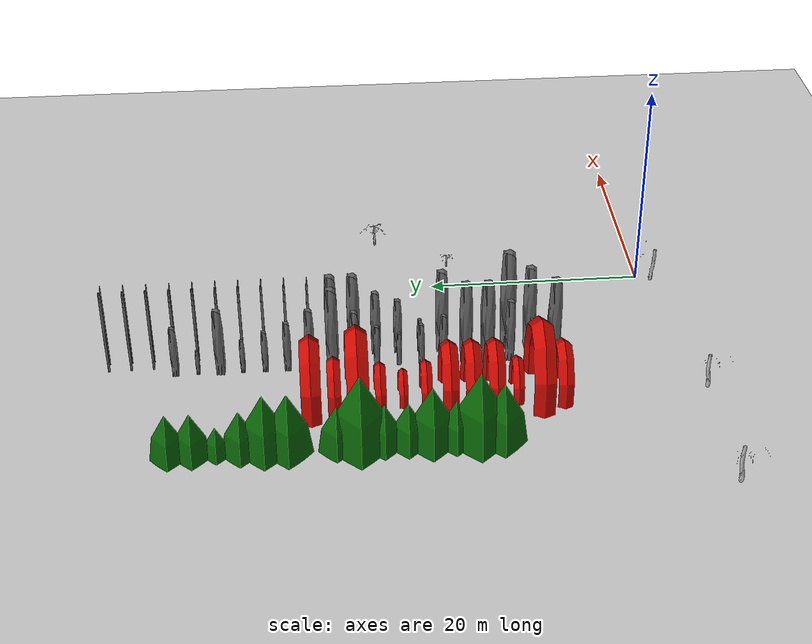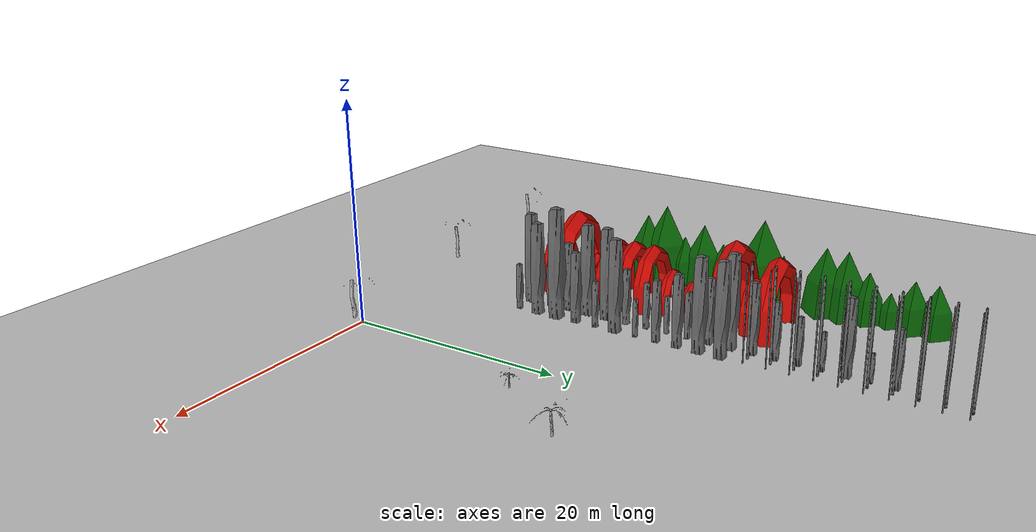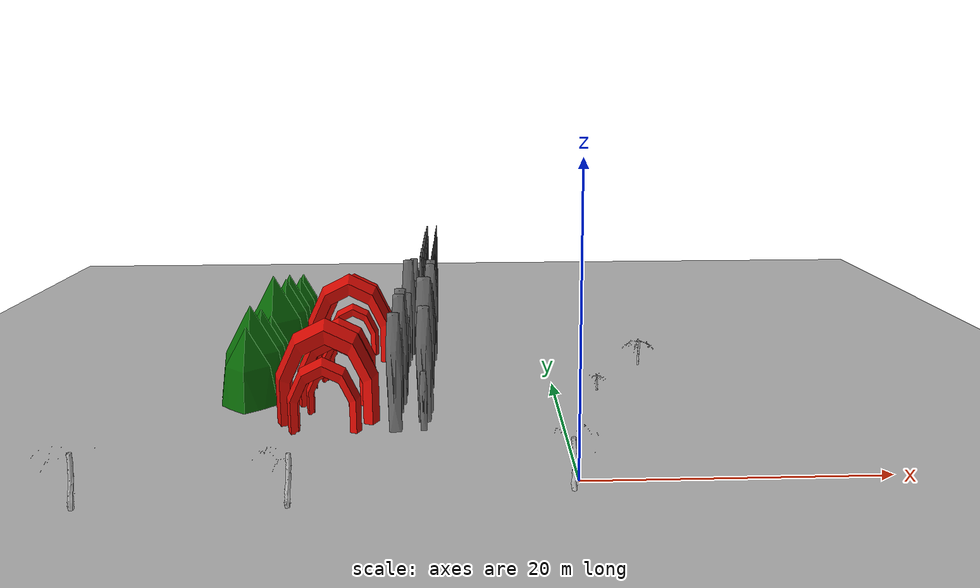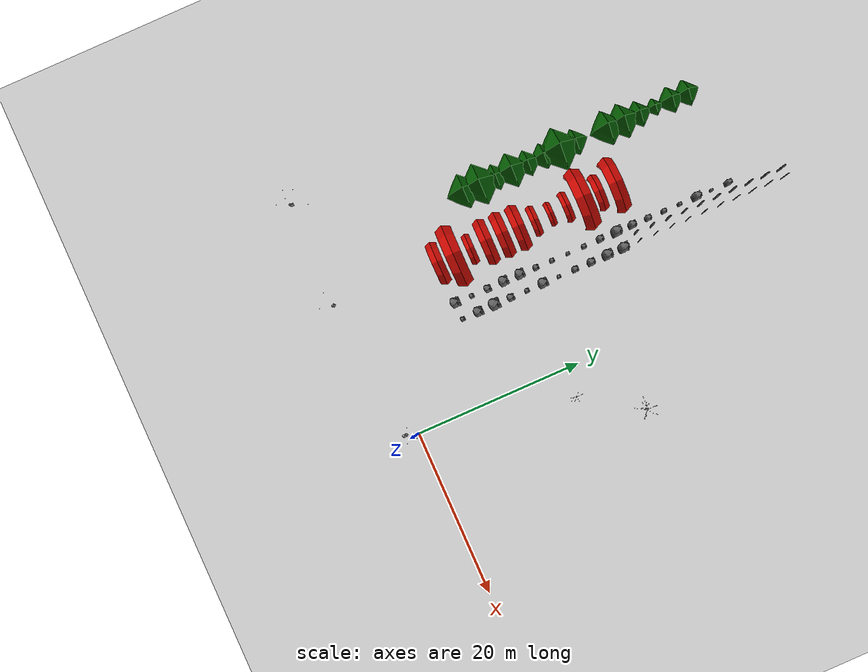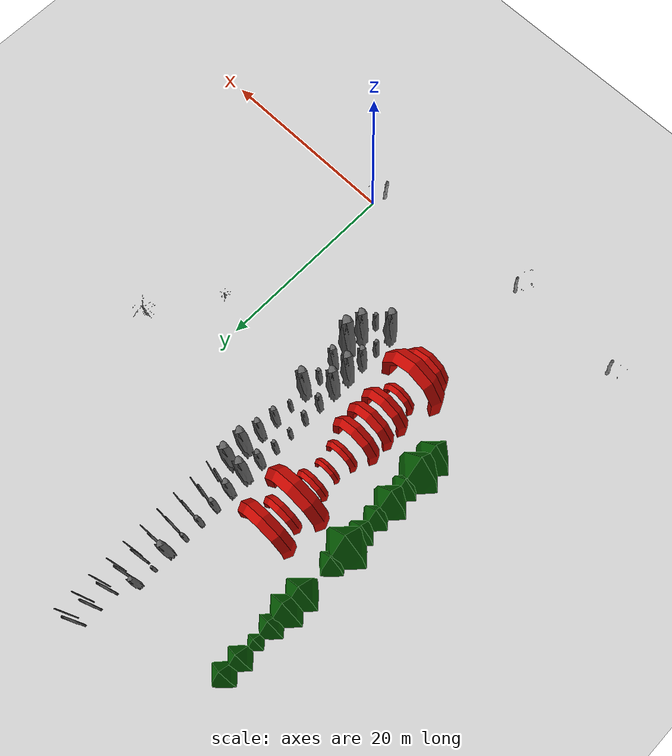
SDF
<sdf version="1.6">
 <world name="default">
  <model name="ground_plane">
   <static>1</static>
   <link name="link">
    <collision name="collision">
     <geometry><plane><normal>0 0 1</normal><size>1000 1000</size></plane></geometry>
     <surface>
      <contact><collide_bitmask>65535</collide_bitmask></contact>
      <friction><ode><mu>100</mu><mu2>50</mu2></ode></friction>
     </surface>
    </collision>
    <visual name="visual">
     <cast_shadows>0</cast_shadows>
     <geometry><plane><normal>0 0 1</normal><size>1000 1000</size></plane></geometry>
     <material>
      <script><uri>file://media/materials/scripts/gazebo.material</uri><name>Gazebo/Grey</name></script>
     </material>
    </visual>
   </link>
  </model>
  <model name="Simple Pyramid_3">
   <pose>-23.5 16 0 0 -0 0</pose>
   <static>1</static>
   <link name="link">
    <collision name="collision">
     <geometry><mesh><uri>model://Simple Pyramid/meshes/Simple Pyramid.dae</uri></mesh></geometry>
    </collision>
    <visual name="visual">
     <geometry><mesh><uri>model://Simple Pyramid/meshes/Simple Pyramid.dae</uri></mesh></geometry>
    </visual>
   </link>
  </model>
  <model name="Simple Pyramid_4">
   <pose>-23.5 18 0 0 -0 0</pose>
   <static>1</static>
   <link name="link">
    <collision name="collision">
     <geometry>
      <mesh><uri>model://Simple Pyramid/meshes/Simple Pyramid.dae</uri><scale>1.2 1.2 1.2</scale></mesh>
     </geometry>
    </collision>
    <visual name="visual">
     <geometry>
      <mesh><uri>model://Simple Pyramid/meshes/Simple Pyramid.dae</uri><scale>1.2 1.2 1.2</scale></mesh>
     </geometry>
    </visual>
   </link>
  </model>
  <model name="Simple Pyramid_5">
   <pose>-23.5 20 0 0 -0 0</pose>
   <static>1</static>
   <link name="link">
    <collision name="collision">
     <geometry>
      <mesh><uri>model://Simple Pyramid/meshes/Simple Pyramid.dae</uri><scale>0.75 0.75 0.75</scale></mesh>
     </geometry>
    </collision>
    <visual name="visual">
     <geometry>
      <mesh><uri>model://Simple Pyramid/meshes/Simple Pyramid.dae</uri><scale>0.75 0.75 0.75</scale></mesh>
     </geometry>
    </visual>
   </link>
  </model>
  <model name="Simple Pyramid_6">
   <pose>-23.5 22 0 0 -0 0</pose>
   <static>1</static>
   <link name="link">
    <collision name="collision">
     <geometry><mesh><uri>model://Simple Pyramid/meshes/Simple Pyramid.dae</uri></mesh></geometry>
    </collision>
    <visual name="visual">
     <geometry><mesh><uri>model://Simple Pyramid/meshes/Simple Pyramid.dae</uri></mesh></geometry>
    </visual>
   </link>
  </model>
  <model name="Simple Pyramid_7">
   <pose>-23.5 24 0 0 -0 0</pose>
   <static>1</static>
   <link name="link">
    <collision name="collision">
     <geometry>
      <mesh><uri>model://Simple Pyramid/meshes/Simple Pyramid.dae</uri><scale>0.75 0.75 0.75</scale></mesh>
     </geometry>
    </collision>
    <visual name="visual">
     <geometry>
      <mesh><uri>model://Simple Pyramid/meshes/Simple Pyramid.dae</uri><scale>0.75 0.75 0.75</scale></mesh>
     </geometry>
    </visual>
   </link>
  </model>
  <model name="Simple Pyramid_8">
   <pose>-23.5 26 0 0 -0 0</pose>
   <static>1</static>
   <link name="link">
    <collision name="collision">
     <geometry>
      <mesh><uri>model://Simple Pyramid/meshes/Simple Pyramid.dae</uri><scale>0.75 0.75 0.75</scale></mesh>
     </geometry>
    </collision>
    <visual name="visual">
     <geometry>
      <mesh><uri>model://Simple Pyramid/meshes/Simple Pyramid.dae</uri><scale>0.75 0.75 0.75</scale></mesh>
     </geometry>
    </visual>
   </link>
  </model>
  <model name="Simple Pyramid_9">
   <pose>-23.5 28 0 0 -0 0</pose>
   <static>1</static>
   <link name="link">
    <collision name="collision">
     <geometry>
      <mesh><uri>model://Simple Pyramid/meshes/Simple Pyramid.dae</uri><scale>1.25 1.25 1.25</scale></mesh>
     </geometry>
    </collision>
    <visual name="visual">
     <geometry>
      <mesh><uri>model://Simple Pyramid/meshes/Simple Pyramid.dae</uri><scale>1.25 1.25 1.25</scale></mesh>
     </geometry>
    </visual>
   </link>
  </model>
  <model name="Simple Pyramid_10">
   <pose>-23.5 30 0 0 -0 0</pose>
   <static>1</static>
   <link name="link">
    <collision name="collision">
     <geometry>
      <mesh><uri>model://Simple Pyramid/meshes/Simple Pyramid.dae</uri><scale>0.75 0.75 0.75</scale></mesh>
     </geometry>
    </collision>
    <visual name="visual">
     <geometry>
      <mesh><uri>model://Simple Pyramid/meshes/Simple Pyramid.dae</uri><scale>0.75 0.75 0.75</scale></mesh>
     </geometry>
    </visual>
   </link>
  </model>
  <model name="Simple U_7">
   <pose>-17 24 0 0 -0 0</pose>
   <static>1</static>
   <link name="link">
    <collision name="collision">
     <geometry><mesh><uri>model://Simple U/meshes/Simple U.dae</uri><scale>0.4 0.4 0.4</scale></mesh></geometry>
    </collision>
    <visual name="visual">
     <geometry><mesh><uri>model://Simple U/meshes/Simple U.dae</uri><scale>0.4 0.4 0.4</scale></mesh></geometry>
    </visual>
   </link>
  </model>
  <model name="Simple U_0">
   <pose>-17 10 0 0 -0 0</pose>
   <static>1</static>
   <link name="link">
    <collision name="collision">
     <geometry><mesh><uri>model://Simple U/meshes/Simple U.dae</uri><scale>0.7 0.7 0.7</scale></mesh></geometry>
    </collision>
    <visual name="visual">
     <geometry><mesh><uri>model://Simple U/meshes/Simple U.dae</uri><scale>0.7 0.7 0.7</scale></mesh></geometry>
    </visual>
   </link>
  </model>
  <model name="Simple U_1">
   <pose>-17 12 0 0 -0 0</pose>
   <static>1</static>
   <link name="link">
    <collision name="collision">
     <geometry><mesh><uri>model://Simple U/meshes/Simple U.dae</uri></mesh></geometry>
    </collision>
    <visual name="visual">
     <geometry><mesh><uri>model://Simple U/meshes/Simple U.dae</uri></mesh></geometry>
    </visual>
   </link>
  </model>
  <model name="Simple U_2">
   <pose>-17 14 0 0 -0 0</pose>
   <static>1</static>
   <link name="link">
    <collision name="collision">
     <geometry><mesh><uri>model://Simple U/meshes/Simple U.dae</uri><scale>0.5 0.5 0.5</scale></mesh></geometry>
    </collision>
    <visual name="visual">
     <geometry><mesh><uri>model://Simple U/meshes/Simple U.dae</uri><scale>0.5 0.5 0.5</scale></mesh></geometry>
    </visual>
   </link>
  </model>
  <model name="Simple U_3">
   <pose>-17 16 0 0 -0 0</pose>
   <static>1</static>
   <link name="link">
    <collision name="collision">
     <geometry><mesh><uri>model://Simple U/meshes/Simple U.dae</uri><scale>0.75 0.75 0.75</scale></mesh></geometry>
    </collision>
    <visual name="visual">
     <geometry><mesh><uri>model://Simple U/meshes/Simple U.dae</uri><scale>0.75 0.75 0.75</scale></mesh></geometry>
    </visual>
   </link>
  </model>
  <model name="Simple U_4">
   <pose>-17 18 0 0 -0 0</pose>
   <static>1</static>
   <link name="link">
    <collision name="collision">
     <geometry><mesh><uri>model://Simple U/meshes/Simple U.dae</uri><scale>0.75 0.75 0.75</scale></mesh></geometry>
    </collision>
    <visual name="visual">
     <geometry><mesh><uri>model://Simple U/meshes/Simple U.dae</uri><scale>0.75 0.75 0.75</scale></mesh></geometry>
    </visual>
   </link>
  </model>
  <model name="Simple U_5">
   <pose>-17 20 0 0 -0 0</pose>
   <static>1</static>
   <link name="link">
    <collision name="collision">
     <geometry><mesh><uri>model://Simple U/meshes/Simple U.dae</uri><scale>0.75 0.75 0.75</scale></mesh></geometry>
    </collision>
    <visual name="visual">
     <geometry><mesh><uri>model://Simple U/meshes/Simple U.dae</uri><scale>0.75 0.75 0.75</scale></mesh></geometry>
    </visual>
   </link>
  </model>
  <model name="Simple U_6">
   <pose>-17 22 0 0 -0 0</pose>
   <static>1</static>
   <link name="link">
    <collision name="collision">
     <geometry><mesh><uri>model://Simple U/meshes/Simple U.dae</uri><scale>0.5 0.5 0.5</scale></mesh></geometry>
    </collision>
    <visual name="visual">
     <geometry><mesh><uri>model://Simple U/meshes/Simple U.dae</uri><scale>0.5 0.5 0.5</scale></mesh></geometry>
    </visual>
   </link>
  </model>
  <model name="Simple Stone_25">
   <pose>-10 24 0 0 -0 0</pose>
   <static>1</static>
   <link name="link">
    <collision name="collision">
     <geometry>
      <mesh><uri>model://Simple Stone/meshes/Simple Stone.dae</uri><scale>0.66 0.66 0.66</scale></mesh>
     </geometry>
    </collision>
    <visual name="visual">
     <geometry>
      <mesh><uri>model://Simple Stone/meshes/Simple Stone.dae</uri><scale>0.66 0.66 0.66</scale></mesh>
     </geometry>
    </visual>
   </link>
  </model>
  <model name="Simple Stone_0">
   <pose>-12 10 0 0 -0 0</pose>
   <static>1</static>
   <link name="link">
    <collision name="collision">
     <geometry><mesh><uri>model://Simple Stone/meshes/Simple Stone.dae</uri></mesh></geometry>
    </collision>
    <visual name="visual">
     <geometry><mesh><uri>model://Simple Stone/meshes/Simple Stone.dae</uri></mesh></geometry>
    </visual>
   </link>
  </model>
  <model name="Simple Stone_1">
   <pose>-12 12 0 0 -0 0</pose>
   <static>1</static>
   <link name="link">
    <collision name="collision">
     <geometry>
      <mesh><uri>model://Simple Stone/meshes/Simple Stone.dae</uri><scale>0.5 0.5 0.5</scale></mesh>
     </geometry>
    </collision>
    <visual name="visual">
     <geometry>
      <mesh><uri>model://Simple Stone/meshes/Simple Stone.dae</uri><scale>0.5 0.5 0.5</scale></mesh>
     </geometry>
    </visual>
   </link>
  </model>
  <model name="Simple Stone_2">
   <pose>-12 14 0 0 -0 0</pose>
   <static>1</static>
   <link name="link">
    <collision name="collision">
     <geometry>
      <mesh><uri>model://Simple Stone/meshes/Simple Stone.dae</uri><scale>0.75 0.75 0.75</scale></mesh>
     </geometry>
    </collision>
    <visual name="visual">
     <geometry>
      <mesh><uri>model://Simple Stone/meshes/Simple Stone.dae</uri><scale>0.75 0.75 0.75</scale></mesh>
     </geometry>
    </visual>
   </link>
  </model>
  <model name="Simple Stone_3">
   <pose>-12 16 0 0 -0 0</pose>
   <static>1</static>
   <link name="link">
    <collision name="collision">
     <geometry><mesh><uri>model://Simple Stone/meshes/Simple Stone.dae</uri></mesh></geometry>
    </collision>
    <visual name="visual">
     <geometry><mesh><uri>model://Simple Stone/meshes/Simple Stone.dae</uri></mesh></geometry>
    </visual>
   </link>
  </model>
  <model name="Simple Stone_4">
   <pose>-12 18 0 0 -0 0</pose>
   <static>1</static>
   <link name="link">
    <collision name="collision">
     <geometry><mesh><uri>model://Simple Stone/meshes/Simple Stone.dae</uri></mesh></geometry>
    </collision>
    <visual name="visual">
     <geometry><mesh><uri>model://Simple Stone/meshes/Simple Stone.dae</uri></mesh></geometry>
    </visual>
   </link>
  </model>
  <model name="Simple Stone_5">
   <pose>-12 20 0 0 -0 0</pose>
   <static>1</static>
   <link name="link">
    <collision name="collision">
     <geometry>
      <mesh><uri>model://Simple Stone/meshes/Simple Stone.dae</uri><scale>0.6 0.6 0.6</scale></mesh>
     </geometry>
    </collision>
    <visual name="visual">
     <geometry>
      <mesh><uri>model://Simple Stone/meshes/Simple Stone.dae</uri><scale>0.6 0.6 0.6</scale></mesh>
     </geometry>
    </visual>
   </link>
  </model>
  <model name="Simple Stone_6">
   <pose>-12 22 0 0 -0 0</pose>
   <static>1</static>
   <link name="link">
    <collision name="collision">
     <geometry>
      <mesh><uri>model://Simple Stone/meshes/Simple Stone.dae</uri><scale>0.5 0.5 0.5</scale></mesh>
     </geometry>
    </collision>
    <visual name="visual">
     <geometry>
      <mesh><uri>model://Simple Stone/meshes/Simple Stone.dae</uri><scale>0.5 0.5 0.5</scale></mesh>
     </geometry>
    </visual>
   </link>
  </model>
  <model name="Simple Stone_7">
   <pose>-12 24 0 0 -0 0</pose>
   <static>1</static>
   <link name="link">
    <collision name="collision">
     <geometry>
      <mesh><uri>model://Simple Stone/meshes/Simple Stone.dae</uri><scale>0.4 0.4 0.4</scale></mesh>
     </geometry>
    </collision>
    <visual name="visual">
     <geometry>
      <mesh><uri>model://Simple Stone/meshes/Simple Stone.dae</uri><scale>0.4 0.4 0.4</scale></mesh>
     </geometry>
    </visual>
   </link>
  </model>
  <model name="Simple Stone_8">
   <pose>-12 26 0 0 -0 0</pose>
   <static>1</static>
   <link name="link">
    <collision name="collision">
     <geometry>
      <mesh><uri>model://Simple Stone/meshes/Simple Stone.dae</uri><scale>0.5 0.5 0.5</scale></mesh>
     </geometry>
    </collision>
    <visual name="visual">
     <geometry>
      <mesh><uri>model://Simple Stone/meshes/Simple Stone.dae</uri><scale>0.5 0.5 0.5</scale></mesh>
     </geometry>
    </visual>
   </link>
  </model>
  <model name="Simple Stone_9">
   <pose>-12 28 0 0 -0 0</pose>
   <static>1</static>
   <link name="link">
    <collision name="collision">
     <geometry>
      <mesh><uri>model://Simple Stone/meshes/Simple Stone.dae</uri><scale>0.7 0.7 0.7</scale></mesh>
     </geometry>
    </collision>
    <visual name="visual">
     <geometry>
      <mesh><uri>model://Simple Stone/meshes/Simple Stone.dae</uri><scale>0.7 0.7 0.7</scale></mesh>
     </geometry>
    </visual>
   </link>
  </model>
  <model name="Simple Stone_10">
   <pose>-12 30 0 0 -0 0</pose>
   <static>1</static>
   <link name="link">
    <collision name="collision">
     <geometry><mesh><uri>model://Simple Stone/meshes/Simple Stone.dae</uri></mesh></geometry>
    </collision>
    <visual name="visual">
     <geometry><mesh><uri>model://Simple Stone/meshes/Simple Stone.dae</uri></mesh></geometry>
    </visual>
   </link>
  </model>
  <model name="Simple Stone_11">
   <pose>-12 32 0 0 -0 0</pose>
   <static>1</static>
   <link name="link">
    <collision name="collision">
     <geometry>
      <mesh><uri>model://Simple Stone/meshes/Simple Stone.dae</uri><scale>0.75 0.75 0.75</scale></mesh>
     </geometry>
    </collision>
    <visual name="visual">
     <geometry>
      <mesh><uri>model://Simple Stone/meshes/Simple Stone.dae</uri><scale>0.75 0.75 0.75</scale></mesh>
     </geometry>
    </visual>
   </link>
  </model>
  <model name="Simple Stone_12">
   <pose>-12 34 0 0 -0 0</pose>
   <static>1</static>
   <link name="link">
    <collision name="collision">
     <geometry>
      <mesh><uri>model://Simple Stone/meshes/Simple Stone.dae</uri><scale>0.6 0.6 0.6</scale></mesh>
     </geometry>
    </collision>
    <visual name="visual">
     <geometry>
      <mesh><uri>model://Simple Stone/meshes/Simple Stone.dae</uri><scale>0.6 0.6 0.6</scale></mesh>
     </geometry>
    </visual>
   </link>
  </model>
  <model name="Simple Stone_13">
   <pose>-12 36 0 0 -0 0</pose>
   <static>1</static>
   <link name="link">
    <collision name="collision">
     <geometry>
      <mesh><uri>model://Simple Stone/meshes/Simple Stone.dae</uri><scale>0.5 0.5 0.5</scale></mesh>
     </geometry>
    </collision>
    <visual name="visual">
     <geometry>
      <mesh><uri>model://Simple Stone/meshes/Simple Stone.dae</uri><scale>0.5 0.5 0.5</scale></mesh>
     </geometry>
    </visual>
   </link>
  </model>
  <model name="Simple Stone_14">
   <pose>-12 38 0 0 -0 0</pose>
   <static>1</static>
   <link name="link">
    <collision name="collision">
     <geometry>
      <mesh><uri>model://Simple Stone/meshes/Simple Stone.dae</uri><scale>0.4 0.4 0.4</scale></mesh>
     </geometry>
    </collision>
    <visual name="visual">
     <geometry>
      <mesh><uri>model://Simple Stone/meshes/Simple Stone.dae</uri><scale>0.4 0.4 0.4</scale></mesh>
     </geometry>
    </visual>
   </link>
  </model>
  <model name="Simple Stone_15">
   <pose>-12 40 0 0 -0 0</pose>
   <static>1</static>
   <link name="link">
    <collision name="collision">
     <geometry>
      <mesh><uri>model://Simple Stone/meshes/Simple Stone.dae</uri><scale>0.8 0.8 0.8</scale></mesh>
     </geometry>
    </collision>
    <visual name="visual">
     <geometry>
      <mesh><uri>model://Simple Stone/meshes/Simple Stone.dae</uri><scale>0.8 0.8 0.8</scale></mesh>
     </geometry>
    </visual>
   </link>
  </model>
  <model name="Simple Stone_16">
   <pose>-12 42 0 0 -0 0</pose>
   <static>1</static>
   <link name="link">
    <collision name="collision">
     <geometry>
      <mesh><uri>model://Simple Stone/meshes/Simple Stone.dae</uri><scale>0.3 0.3 0.3</scale></mesh>
     </geometry>
    </collision>
    <visual name="visual">
     <geometry>
      <mesh><uri>model://Simple Stone/meshes/Simple Stone.dae</uri><scale>0.3 0.3 0.3</scale></mesh>
     </geometry>
    </visual>
   </link>
  </model>
  <model name="Simple Stone_17">
   <pose>-12 44 0 0 -0 0</pose>
   <static>1</static>
   <link name="link">
    <collision name="collision">
     <geometry>
      <mesh><uri>model://Simple Stone/meshes/Simple Stone.dae</uri><scale>0.6 0.6 0.6</scale></mesh>
     </geometry>
    </collision>
    <visual name="visual">
     <geometry>
      <mesh><uri>model://Simple Stone/meshes/Simple Stone.dae</uri><scale>0.6 0.6 0.6</scale></mesh>
     </geometry>
    </visual>
   </link>
  </model>
  <model name="Simple Stone_18">
   <pose>-10 10 0 0 -0 0</pose>
   <static>1</static>
   <link name="link">
    <collision name="collision">
     <geometry>
      <mesh><uri>model://Simple Stone/meshes/Simple Stone.dae</uri><scale>0.5 0.5 0.5</scale></mesh>
     </geometry>
    </collision>
    <visual name="visual">
     <geometry>
      <mesh><uri>model://Simple Stone/meshes/Simple Stone.dae</uri><scale>0.5 0.5 0.5</scale></mesh>
     </geometry>
    </visual>
   </link>
  </model>
  <model name="Simple Stone_19">
   <pose>-10 12 0 0 -0 0</pose>
   <static>1</static>
   <link name="link">
    <collision name="collision">
     <geometry><mesh><uri>model://Simple Stone/meshes/Simple Stone.dae</uri></mesh></geometry>
    </collision>
    <visual name="visual">
     <geometry><mesh><uri>model://Simple Stone/meshes/Simple Stone.dae</uri></mesh></geometry>
    </visual>
   </link>
  </model>
  <model name="Simple Stone_20">
   <pose>-10 14 0 0 -0 0</pose>
   <static>1</static>
   <link name="link">
    <collision name="collision">
     <geometry>
      <mesh><uri>model://Simple Stone/meshes/Simple Stone.dae</uri><scale>1.2 1.2 1.2</scale></mesh>
     </geometry>
    </collision>
    <visual name="visual">
     <geometry>
      <mesh><uri>model://Simple Stone/meshes/Simple Stone.dae</uri><scale>1.2 1.2 1.2</scale></mesh>
     </geometry>
    </visual>
   </link>
  </model>
  <model name="Simple Stone_21">
   <pose>-10 16 0 0 -0 0</pose>
   <static>1</static>
   <link name="link">
    <collision name="collision">
     <geometry>
      <mesh><uri>model://Simple Stone/meshes/Simple Stone.dae</uri><scale>0.77 0.77 0.77</scale></mesh>
     </geometry>
    </collision>
    <visual name="visual">
     <geometry>
      <mesh><uri>model://Simple Stone/meshes/Simple Stone.dae</uri><scale>0.77 0.77 0.77</scale></mesh>
     </geometry>
    </visual>
   </link>
  </model>
  <model name="Simple Stone_22">
   <pose>-10 18 0 0 -0 0</pose>
   <static>1</static>
   <link name="link">
    <collision name="collision">
     <geometry>
      <mesh><uri>model://Simple Stone/meshes/Simple Stone.dae</uri><scale>0.5 0.5 0.5</scale></mesh>
     </geometry>
    </collision>
    <visual name="visual">
     <geometry>
      <mesh><uri>model://Simple Stone/meshes/Simple Stone.dae</uri><scale>0.5 0.5 0.5</scale></mesh>
     </geometry>
    </visual>
   </link>
  </model>
  <model name="Simple Stone_23">
   <pose>-10 20 0 0 -0 0</pose>
   <static>1</static>
   <link name="link">
    <collision name="collision">
     <geometry><mesh><uri>model://Simple Stone/meshes/Simple Stone.dae</uri></mesh></geometry>
    </collision>
    <visual name="visual">
     <geometry><mesh><uri>model://Simple Stone/meshes/Simple Stone.dae</uri></mesh></geometry>
    </visual>
   </link>
  </model>
  <model name="Simple Stone_24">
   <pose>-10 22 0 0 -0 0</pose>
   <static>1</static>
   <link name="link">
    <collision name="collision">
     <geometry>
      <mesh><uri>model://Simple Stone/meshes/Simple Stone.dae</uri><scale>0.4 0.4 0.4</scale></mesh>
     </geometry>
    </collision>
    <visual name="visual">
     <geometry>
      <mesh><uri>model://Simple Stone/meshes/Simple Stone.dae</uri><scale>0.4 0.4 0.4</scale></mesh>
     </geometry>
    </visual>
   </link>
  </model>
  <model name="Simple Pyramid_17">
   <pose>-23.5 44 0 0 -0 0</pose>
   <static>1</static>
   <link name="link">
    <collision name="collision">
     <geometry>
      <mesh><uri>model://Simple Pyramid/meshes/Simple Pyramid.dae</uri><scale>0.75 0.75 0.75</scale></mesh>
     </geometry>
    </collision>
    <visual name="visual">
     <geometry>
      <mesh><uri>model://Simple Pyramid/meshes/Simple Pyramid.dae</uri><scale>0.75 0.75 0.75</scale></mesh>
     </geometry>
    </visual>
   </link>
  </model>
  <model name="Simple U_11">
   <pose>-17 32 0 0 -0 0</pose>
   <static>1</static>
   <link name="link">
    <collision name="collision">
     <geometry><mesh><uri>model://Simple U/meshes/Simple U.dae</uri><scale>0.9 0.9 0.9</scale></mesh></geometry>
    </collision>
    <visual name="visual">
     <geometry><mesh><uri>model://Simple U/meshes/Simple U.dae</uri><scale>0.9 0.9 0.9</scale></mesh></geometry>
    </visual>
   </link>
  </model>
  <model name="Simple U_8">
   <pose>-17 26 0 0 -0 0</pose>
   <static>1</static>
   <link name="link">
    <collision name="collision">
     <geometry><mesh><uri>model://Simple U/meshes/Simple U.dae</uri><scale>0.5 0.5 0.5</scale></mesh></geometry>
    </collision>
    <visual name="visual">
     <geometry><mesh><uri>model://Simple U/meshes/Simple U.dae</uri><scale>0.5 0.5 0.5</scale></mesh></geometry>
    </visual>
   </link>
  </model>
  <model name="Simple U_9">
   <pose>-17 28 0 0 -0 0</pose>
   <static>1</static>
   <link name="link">
    <collision name="collision">
     <geometry><mesh><uri>model://Simple U/meshes/Simple U.dae</uri></mesh></geometry>
    </collision>
    <visual name="visual">
     <geometry><mesh><uri>model://Simple U/meshes/Simple U.dae</uri></mesh></geometry>
    </visual>
   </link>
  </model>
  <model name="Simple Pyramid_12">
   <pose>-23.5 34 0 0 -0 0</pose>
   <static>1</static>
   <link name="link">
    <collision name="collision">
     <geometry><mesh><uri>model://Simple Pyramid/meshes/Simple Pyramid.dae</uri></mesh></geometry>
    </collision>
    <visual name="visual">
     <geometry><mesh><uri>model://Simple Pyramid/meshes/Simple Pyramid.dae</uri></mesh></geometry>
    </visual>
   </link>
  </model>
  <model name="Simple Pyramid_13">
   <pose>-23.5 36 0 0 -0 0</pose>
   <static>1</static>
   <link name="link">
    <collision name="collision">
     <geometry><mesh><uri>model://Simple Pyramid/meshes/Simple Pyramid.dae</uri></mesh></geometry>
    </collision>
    <visual name="visual">
     <geometry><mesh><uri>model://Simple Pyramid/meshes/Simple Pyramid.dae</uri></mesh></geometry>
    </visual>
   </link>
  </model>
  <model name="Simple Pyramid_14">
   <pose>-23.5 38 0 0 -0 0</pose>
   <static>1</static>
   <link name="link">
    <collision name="collision">
     <geometry>
      <mesh><uri>model://Simple Pyramid/meshes/Simple Pyramid.dae</uri><scale>0.75 0.75 0.75</scale></mesh>
     </geometry>
    </collision>
    <visual name="visual">
     <geometry>
      <mesh><uri>model://Simple Pyramid/meshes/Simple Pyramid.dae</uri><scale>0.75 0.75 0.75</scale></mesh>
     </geometry>
    </visual>
   </link>
  </model>
  <model name="Simple Pyramid_15">
   <pose>-23.5 40 0 0 -0 0</pose>
   <static>1</static>
   <link name="link">
    <collision name="collision">
     <geometry>
      <mesh><uri>model://Simple Pyramid/meshes/Simple Pyramid.dae</uri><scale>0.5 0.5 0.5</scale></mesh>
     </geometry>
    </collision>
    <visual name="visual">
     <geometry>
      <mesh><uri>model://Simple Pyramid/meshes/Simple Pyramid.dae</uri><scale>0.5 0.5 0.5</scale></mesh>
     </geometry>
    </visual>
   </link>
  </model>
  <model name="Simple Stone_28">
   <pose>-10 30 0 0 -0 0</pose>
   <static>1</static>
   <link name="link">
    <collision name="collision">
     <geometry><mesh><uri>model://Simple Stone/meshes/Simple Stone.dae</uri></mesh></geometry>
    </collision>
    <visual name="visual">
     <geometry><mesh><uri>model://Simple Stone/meshes/Simple Stone.dae</uri></mesh></geometry>
    </visual>
   </link>
  </model>
  <model name="Simple Stone_29">
   <pose>-10 32 0 0 -0 0</pose>
   <static>1</static>
   <link name="link">
    <collision name="collision">
     <geometry>
      <mesh><uri>model://Simple Stone/meshes/Simple Stone.dae</uri><scale>0.1 0.1 1.0</scale></mesh>
     </geometry>
    </collision>
    <visual name="visual">
     <geometry>
      <mesh><uri>model://Simple Stone/meshes/Simple Stone.dae</uri><scale>0.1 0.1 1.0</scale></mesh>
     </geometry>
    </visual>
   </link>
  </model>
  <model name="Simple Stone_30">
   <pose>-10 34 0 0 -0 0</pose>
   <static>1</static>
   <link name="link">
    <collision name="collision">
     <geometry>
      <mesh><uri>model://Simple Stone/meshes/Simple Stone.dae</uri><scale>0.1 0.1 1.0</scale></mesh>
     </geometry>
    </collision>
    <visual name="visual">
     <geometry>
      <mesh><uri>model://Simple Stone/meshes/Simple Stone.dae</uri><scale>0.1 0.1 1.0</scale></mesh>
     </geometry>
    </visual>
   </link>
  </model>
  <model name="Simple Stone_31">
   <pose>-10 36 0 0 -0 0</pose>
   <static>1</static>
   <link name="link">
    <collision name="collision">
     <geometry>
      <mesh><uri>model://Simple Stone/meshes/Simple Stone.dae</uri><scale>0.1 0.1 1.0</scale></mesh>
     </geometry>
    </collision>
    <visual name="visual">
     <geometry>
      <mesh><uri>model://Simple Stone/meshes/Simple Stone.dae</uri><scale>0.1 0.1 1.0</scale></mesh>
     </geometry>
    </visual>
   </link>
  </model>
  <model name="Simple Stone_32">
   <pose>-10 38 0 0 -0 0</pose>
   <static>1</static>
   <link name="link">
    <collision name="collision">
     <geometry>
      <mesh><uri>model://Simple Stone/meshes/Simple Stone.dae</uri><scale>0.1 0.1 1.0</scale></mesh>
     </geometry>
    </collision>
    <visual name="visual">
     <geometry>
      <mesh><uri>model://Simple Stone/meshes/Simple Stone.dae</uri><scale>0.1 0.1 1.0</scale></mesh>
     </geometry>
    </visual>
   </link>
  </model>
  <model name="Simple Stone_33">
   <pose>-10 40 0 0 -0 0</pose>
   <static>1</static>
   <link name="link">
    <collision name="collision">
     <geometry>
      <mesh><uri>model://Simple Stone/meshes/Simple Stone.dae</uri><scale>0.1 0.1 1.0</scale></mesh>
     </geometry>
    </collision>
    <visual name="visual">
     <geometry>
      <mesh><uri>model://Simple Stone/meshes/Simple Stone.dae</uri><scale>0.1 0.1 1.0</scale></mesh>
     </geometry>
    </visual>
   </link>
  </model>
  <model name="Simple Stone_34">
   <pose>-11 32 0 0 -0 0</pose>
   <static>1</static>
   <link name="link">
    <collision name="collision">
     <geometry>
      <mesh><uri>model://Simple Stone/meshes/Simple Stone.dae</uri><scale>0.2 0.2 1.0</scale></mesh>
     </geometry>
    </collision>
    <visual name="visual">
     <geometry>
      <mesh><uri>model://Simple Stone/meshes/Simple Stone.dae</uri><scale>0.2 0.2 1.0</scale></mesh>
     </geometry>
    </visual>
   </link>
  </model>
  <model name="Simple Stone_35">
   <pose>-11 34 0 0 -0 0</pose>
   <static>1</static>
   <link name="link">
    <collision name="collision">
     <geometry>
      <mesh><uri>model://Simple Stone/meshes/Simple Stone.dae</uri><scale>0.2 0.2 1.0</scale></mesh>
     </geometry>
    </collision>
    <visual name="visual">
     <geometry>
      <mesh><uri>model://Simple Stone/meshes/Simple Stone.dae</uri><scale>0.2 0.2 1.0</scale></mesh>
     </geometry>
    </visual>
   </link>
  </model>
  <model name="Simple Stone_36">
   <pose>-11 36 0 0 -0 0</pose>
   <static>1</static>
   <link name="link">
    <collision name="collision">
     <geometry>
      <mesh><uri>model://Simple Stone/meshes/Simple Stone.dae</uri><scale>0.2 0.2 1.0</scale></mesh>
     </geometry>
    </collision>
    <visual name="visual">
     <geometry>
      <mesh><uri>model://Simple Stone/meshes/Simple Stone.dae</uri><scale>0.2 0.2 1.0</scale></mesh>
     </geometry>
    </visual>
   </link>
  </model>
  <model name="Simple Stone_37">
   <pose>-11 38 0 0 -0 0</pose>
   <static>1</static>
   <link name="link">
    <collision name="collision">
     <geometry>
      <mesh><uri>model://Simple Stone/meshes/Simple Stone.dae</uri><scale>0.2 0.2 1.0</scale></mesh>
     </geometry>
    </collision>
    <visual name="visual">
     <geometry>
      <mesh><uri>model://Simple Stone/meshes/Simple Stone.dae</uri><scale>0.2 0.2 1.0</scale></mesh>
     </geometry>
    </visual>
   </link>
  </model>
  <model name="Simple Stone_38">
   <pose>-11 40 0 0 -0 0</pose>
   <static>1</static>
   <link name="link">
    <collision name="collision">
     <geometry>
      <mesh><uri>model://Simple Stone/meshes/Simple Stone.dae</uri><scale>0.2 0.2 1.0</scale></mesh>
     </geometry>
    </collision>
    <visual name="visual">
     <geometry>
      <mesh><uri>model://Simple Stone/meshes/Simple Stone.dae</uri><scale>0.2 0.2 1.0</scale></mesh>
     </geometry>
    </visual>
   </link>
  </model>
  <model name="Simple Stone_39">
   <pose>-10 42 0 0 -0 0</pose>
   <static>1</static>
   <link name="link">
    <collision name="collision">
     <geometry>
      <mesh><uri>model://Simple Stone/meshes/Simple Stone.dae</uri><scale>0.1 0.1 1.0</scale></mesh>
     </geometry>
    </collision>
    <visual name="visual">
     <geometry>
      <mesh><uri>model://Simple Stone/meshes/Simple Stone.dae</uri><scale>0.1 0.1 1.0</scale></mesh>
     </geometry>
    </visual>
   </link>
  </model>
  <model name="Simple Stone_40">
   <pose>-10 44 0 0 -0 0</pose>
   <static>1</static>
   <link name="link">
    <collision name="collision">
     <geometry>
      <mesh><uri>model://Simple Stone/meshes/Simple Stone.dae</uri><scale>0.1 0.1 1.0</scale></mesh>
     </geometry>
    </collision>
    <visual name="visual">
     <geometry>
      <mesh><uri>model://Simple Stone/meshes/Simple Stone.dae</uri><scale>0.1 0.1 1.0</scale></mesh>
     </geometry>
    </visual>
   </link>
  </model>
  <model name="Simple Stone_41">
   <pose>-10 46 0 0 -0 0</pose>
   <static>1</static>
   <link name="link">
    <collision name="collision">
     <geometry>
      <mesh><uri>model://Simple Stone/meshes/Simple Stone.dae</uri><scale>0.1 0.1 1.0</scale></mesh>
     </geometry>
    </collision>
    <visual name="visual">
     <geometry>
      <mesh><uri>model://Simple Stone/meshes/Simple Stone.dae</uri><scale>0.1 0.1 1.0</scale></mesh>
     </geometry>
    </visual>
   </link>
  </model>
  <model name="Simple Stone_42">
   <pose>-10 48 0 0 -0 0</pose>
   <static>1</static>
   <link name="link">
    <collision name="collision">
     <geometry>
      <mesh><uri>model://Simple Stone/meshes/Simple Stone.dae</uri><scale>0.1 0.1 1.0</scale></mesh>
     </geometry>
    </collision>
    <visual name="visual">
     <geometry>
      <mesh><uri>model://Simple Stone/meshes/Simple Stone.dae</uri><scale>0.1 0.1 1.0</scale></mesh>
     </geometry>
    </visual>
   </link>
  </model>
  <model name="Simple Stone_43">
   <pose>-10 50 0 0 -0 0</pose>
   <static>1</static>
   <link name="link">
    <collision name="collision">
     <geometry>
      <mesh><uri>model://Simple Stone/meshes/Simple Stone.dae</uri><scale>0.1 0.1 1.0</scale></mesh>
     </geometry>
    </collision>
    <visual name="visual">
     <geometry>
      <mesh><uri>model://Simple Stone/meshes/Simple Stone.dae</uri><scale>0.1 0.1 1.0</scale></mesh>
     </geometry>
    </visual>
   </link>
  </model>
  <model name="Simple Stone_44">
   <pose>-11 42 0 0 -0 0</pose>
   <static>1</static>
   <link name="link">
    <collision name="collision">
     <geometry>
      <mesh><uri>model://Simple Stone/meshes/Simple Stone.dae</uri><scale>0.2 0.2 1.0</scale></mesh>
     </geometry>
    </collision>
    <visual name="visual">
     <geometry>
      <mesh><uri>model://Simple Stone/meshes/Simple Stone.dae</uri><scale>0.2 0.2 1.0</scale></mesh>
     </geometry>
    </visual>
   </link>
  </model>
  <model name="Simple Stone_45">
   <pose>-11 44 0 0 -0 0</pose>
   <static>1</static>
   <link name="link">
    <collision name="collision">
     <geometry>
      <mesh><uri>model://Simple Stone/meshes/Simple Stone.dae</uri><scale>0.2 0.2 1.0</scale></mesh>
     </geometry>
    </collision>
    <visual name="visual">
     <geometry>
      <mesh><uri>model://Simple Stone/meshes/Simple Stone.dae</uri><scale>0.2 0.2 1.0</scale></mesh>
     </geometry>
    </visual>
   </link>
  </model>
  <model name="Simple Stone_46">
   <pose>-11 46 0 0 -0 0</pose>
   <static>1</static>
   <link name="link">
    <collision name="collision">
     <geometry>
      <mesh><uri>model://Simple Stone/meshes/Simple Stone.dae</uri><scale>0.2 0.2 1.0</scale></mesh>
     </geometry>
    </collision>
    <visual name="visual">
     <geometry>
      <mesh><uri>model://Simple Stone/meshes/Simple Stone.dae</uri><scale>0.2 0.2 1.0</scale></mesh>
     </geometry>
    </visual>
   </link>
  </model>
  <model name="Simple Stone_47">
   <pose>-11 48 0 0 -0 0</pose>
   <static>1</static>
   <link name="link">
    <collision name="collision">
     <geometry>
      <mesh><uri>model://Simple Stone/meshes/Simple Stone.dae</uri><scale>0.2 0.2 1.0</scale></mesh>
     </geometry>
    </collision>
    <visual name="visual">
     <geometry>
      <mesh><uri>model://Simple Stone/meshes/Simple Stone.dae</uri><scale>0.2 0.2 1.0</scale></mesh>
     </geometry>
    </visual>
   </link>
  </model>
  <model name="Simple Stone_48">
   <pose>-11 50 0 0 -0 0</pose>
   <static>1</static>
   <link name="link">
    <collision name="collision">
     <geometry>
      <mesh><uri>model://Simple Stone/meshes/Simple Stone.dae</uri><scale>0.2 0.2 1.0</scale></mesh>
     </geometry>
    </collision>
    <visual name="visual">
     <geometry>
      <mesh><uri>model://Simple Stone/meshes/Simple Stone.dae</uri><scale>0.2 0.2 1.0</scale></mesh>
     </geometry>
    </visual>
   </link>
  </model>
  <model name="Simple Stone_26">
   <pose>-10 26 0 0 -0 0</pose>
   <static>1</static>
   <link name="link">
    <collision name="collision">
     <geometry>
      <mesh><uri>model://Simple Stone/meshes/Simple Stone.dae</uri><scale>0.77 0.77 0.77</scale></mesh>
     </geometry>
    </collision>
    <visual name="visual">
     <geometry>
      <mesh><uri>model://Simple Stone/meshes/Simple Stone.dae</uri><scale>0.77 0.77 0.77</scale></mesh>
     </geometry>
    </visual>
   </link>
  </model>
  <model name="Simple U_10">
   <pose>-17 30 0 0 -0 0</pose>
   <static>1</static>
   <link name="link">
    <collision name="collision">
     <geometry><mesh><uri>model://Simple U/meshes/Simple U.dae</uri><scale>0.6 0.6 0.6</scale></mesh></geometry>
    </collision>
    <visual name="visual">
     <geometry><mesh><uri>model://Simple U/meshes/Simple U.dae</uri><scale>0.6 0.6 0.6</scale></mesh></geometry>
    </visual>
   </link>
  </model>
  <model name="Simple Pyramid_16">
   <pose>-23.5 42 0 0 -0 0</pose>
   <static>1</static>
   <link name="link">
    <collision name="collision">
     <geometry>
      <mesh><uri>model://Simple Pyramid/meshes/Simple Pyramid.dae</uri><scale>0.75 0.75 0.75</scale></mesh>
     </geometry>
    </collision>
    <visual name="visual">
     <geometry>
      <mesh><uri>model://Simple Pyramid/meshes/Simple Pyramid.dae</uri><scale>0.75 0.75 0.75</scale></mesh>
     </geometry>
    </visual>
   </link>
  </model>
  <model name="Simple Stone_27">
   <pose>-10 28 0 0 -0 0</pose>
   <static>1</static>
   <link name="link">
    <collision name="collision">
     <geometry><mesh><uri>model://Simple Stone/meshes/Simple Stone.dae</uri></mesh></geometry>
    </collision>
    <visual name="visual">
     <geometry><mesh><uri>model://Simple Stone/meshes/Simple Stone.dae</uri></mesh></geometry>
    </visual>
   </link>
  </model>
  <model name="tre_31">
   <static>1</static>
   <link name="link">
    <pose>-9.580212354414922 3.431378443915932 0 0 0 1.0237731702362387</pose>
    <inertial>
     <mass>100</mass>
     <inertia><ixx>100</ixx><ixy>0</ixy><ixz>0</ixz><iyy>100</iyy><iyz>0</iyz><izz>100</izz></inertia>
    </inertial>
    <collision name="collision">
     <geometry>
      <mesh>
       <uri>file:///home/dgguglielmo/forest_gen/models_high_res/picea_abies_6.dae</uri>
       <scale>1.5096348598435865 1.5096348598435865 1.5096348598435865</scale>
      </mesh>
     </geometry>
    </collision>
    <visual name="visual">
     <geometry>
      <mesh>
       <uri>file:///home/dgguglielmo/forest_gen/models_high_res/picea_abies_6.dae</uri>
       <scale>1.5096348598435865 1.5096348598435865 1.5096348598435865</scale>
      </mesh>
     </geometry>
    </visual>
   </link>
   <pose>-9.580212354414922 3.431378443915932 0 0 0 1.0237731702362387</pose>
  </model>
  <model name="tre_55">
   <static>1</static>
   <link name="link">
    <pose>-10.071992405589935 2.3077482687857334 0 0 0 3.0006095908262167</pose>
    <inertial>
     <mass>100</mass>
     <inertia><ixx>100</ixx><ixy>0</ixy><ixz>0</ixz><iyy>100</iyy><iyz>0</iyz><izz>100</izz></inertia>
    </inertial>
    <collision name="collision">
     <geometry>
      <mesh>
       <uri>file:///home/dgguglielmo/forest_gen/models_high_res/picea_abies_6.dae</uri>
       <scale>1.577739339749665 1.577739339749665 1.577739339749665</scale>
      </mesh>
     </geometry>
    </collision>
    <visual name="visual">
     <geometry>
      <mesh>
       <uri>file:///home/dgguglielmo/forest_gen/models_high_res/picea_abies_6.dae</uri>
       <scale>1.577739339749665 1.577739339749665 1.577739339749665</scale>
      </mesh>
     </geometry>
    </visual>
   </link>
   <pose>-10.071992405589935 2.3077482687857334 0 0 0 3.0006095908262167</pose>
  </model>
  <model name="tre_56">
   <static>1</static>
   <link name="link">
    <pose>-18.933350015251897 19.755239361853405 0 0 0 4.145586921885531</pose>
    <inertial>
     <mass>100</mass>
     <inertia><ixx>100</ixx><ixy>0</ixy><ixz>0</ixz><iyy>100</iyy><iyz>0</iyz><izz>100</izz></inertia>
    </inertial>
    <collision name="collision">
     <geometry>
      <mesh>
       <uri>file:///home/dgguglielmo/forest_gen/models_high_res/picea_abies_5.dae</uri>
       <scale>1.039401317494748 1.039401317494748 1.039401317494748</scale>
      </mesh>
     </geometry>
    </collision>
    <visual name="visual">
     <geometry>
      <mesh>
       <uri>file:///home/dgguglielmo/forest_gen/models_high_res/picea_abies_5.dae</uri>
       <scale>1.039401317494748 1.039401317494748 1.039401317494748</scale>
      </mesh>
     </geometry>
    </visual>
   </link>
   <pose>-18.933350015251897 19.755239361853405 0 0 0 4.145586921885531</pose>
  </model>
  <model name="tre_71">
   <static>1</static>
   <link name="link">
    <pose>-13.614711185978706 12.052169444057867 0 0 0 4.215248309736264</pose>
    <inertial>
     <mass>100</mass>
     <inertia><ixx>100</ixx><ixy>0</ixy><ixz>0</ixz><iyy>100</iyy><iyz>0</iyz><izz>100</izz></inertia>
    </inertial>
    <collision name="collision">
     <geometry>
      <mesh>
       <uri>file:///home/dgguglielmo/forest_gen/models_high_res/picea_abies_4.dae</uri>
       <scale>0.612023000823716 0.612023000823716 0.612023000823716</scale>
      </mesh>
     </geometry>
    </collision>
    <visual name="visual">
     <geometry>
      <mesh>
       <uri>file:///home/dgguglielmo/forest_gen/models_high_res/picea_abies_4.dae</uri>
       <scale>0.612023000823716 0.612023000823716 0.612023000823716</scale>
      </mesh>
     </geometry>
    </visual>
   </link>
   <pose>-13.614711185978706 12.052169444057867 0 0 0 4.215248309736264</pose>
  </model>
  <model name="tre_114">
   <static>1</static>
   <link name="link">
    <pose>-15.702534302854861 6.335874722918447 0 0 0 0.9474270433493562</pose>
    <inertial>
     <mass>100</mass>
     <inertia><ixx>100</ixx><ixy>0</ixy><ixz>0</ixz><iyy>100</iyy><iyz>0</iyz><izz>100</izz></inertia>
    </inertial>
    <collision name="collision">
     <geometry>
      <mesh>
       <uri>file:///home/dgguglielmo/forest_gen/models_high_res/picea_abies_6.dae</uri>
       <scale>1.5915495897024727 1.5915495897024727 1.5915495897024727</scale>
      </mesh>
     </geometry>
    </collision>
    <visual name="visual">
     <geometry>
      <mesh>
       <uri>file:///home/dgguglielmo/forest_gen/models_high_res/picea_abies_6.dae</uri>
       <scale>1.5915495897024727 1.5915495897024727 1.5915495897024727</scale>
      </mesh>
     </geometry>
    </visual>
   </link>
   <pose>-15.702534302854861 6.335874722918447 0 0 0 0.9474270433493562</pose>
  </model>
 </world>
</sdf>
